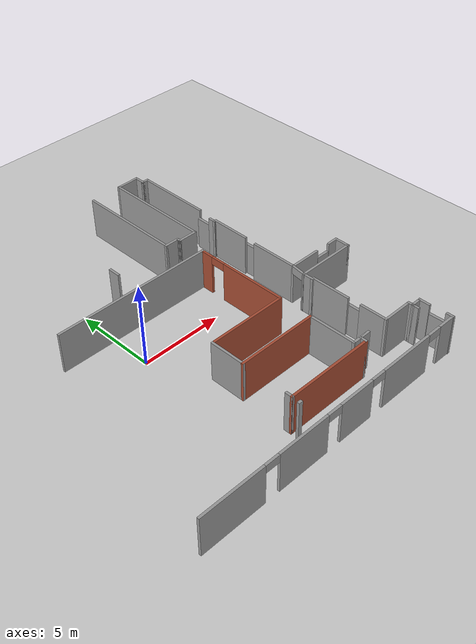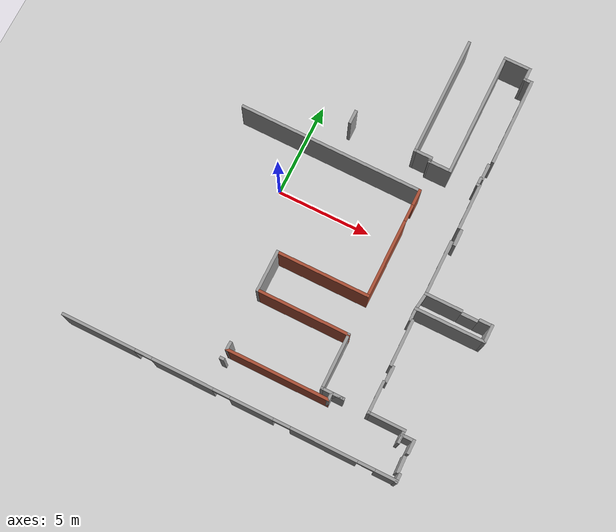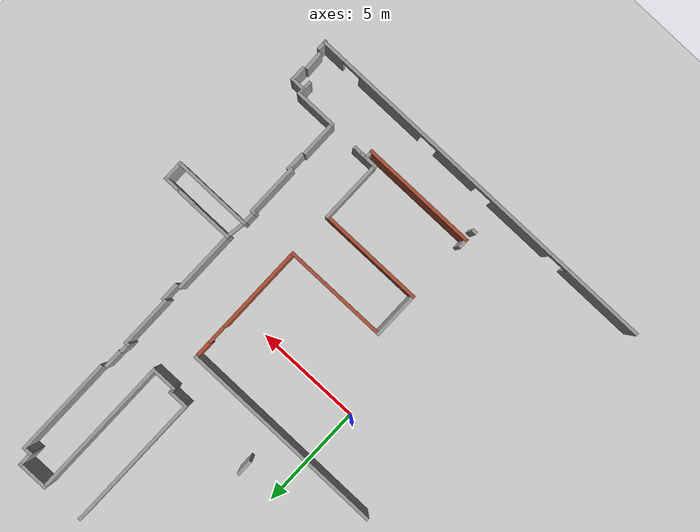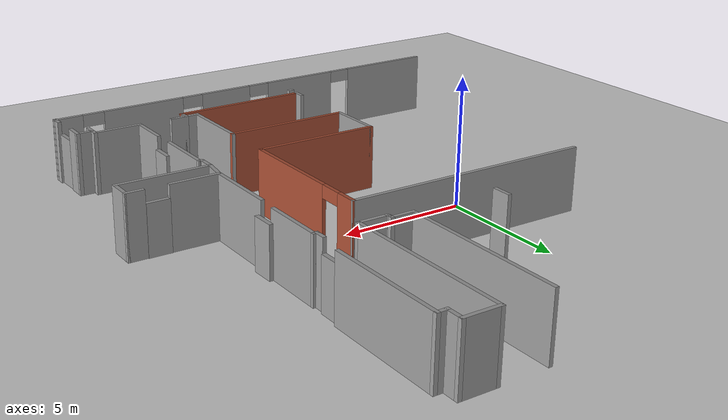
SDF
<sdf version="1.4">
 <world name="default">
  <include><uri>model://ground_plane</uri></include>
  <include><uri>model://sun</uri></include>
  <model name="3rdFloor">
   <static>true</static>
   <link name="Door_2">
    <collision name="Door_2_Collision">
     <geometry><box><size>0.9 0.17 2</size></box></geometry>
     <pose>0 0 1 0 -0 0</pose>
    </collision>
    <visual name="Door_2_Visual">
     <pose>0 0 1 0 -0 0</pose>
     <geometry><box><size>0.9 0.17 2</size></box></geometry>
     <material>
      <script><uri>file://media/materials/scripts/gazebo.material</uri><name>Gazebo/Grey</name></script>
     </material>
    </visual>
    <pose>11.3433 -9.80732 0 0 -0 1.5995</pose>
   </link>
   <link name="Door_3">
    <collision name="Door_3_Collision">
     <geometry><box><size>0.9 0.17 2</size></box></geometry>
     <pose>0 0 1 0 -0 0</pose>
    </collision>
    <visual name="Door_3_Visual">
     <pose>0 0 1 0 -0 0</pose>
     <geometry><box><size>0.9 0.17 2</size></box></geometry>
     <material>
      <script><uri>file://media/materials/scripts/gazebo.material</uri><name>Gazebo/Grey</name></script>
     </material>
    </visual>
    <pose>9.02 -6.21968 0 0 -0 1.5708</pose>
   </link>
   <link name="Door_4">
    <collision name="Door_4_Collision">
     <geometry><box><size>0.9 0.17 2</size></box></geometry>
     <pose>0 0 1 0 -0 0</pose>
    </collision>
    <visual name="Door_4_Visual">
     <pose>0 0 1 0 -0 0</pose>
     <geometry><box><size>0.9 0.17 2</size></box></geometry>
     <material>
      <script><uri>file://media/materials/scripts/gazebo.material</uri><name>Gazebo/Grey</name></script>
     </material>
    </visual>
    <pose>11.2709 -2.03728 0 0 -0 3.13685</pose>
   </link>
   <link name="Door_5">
    <collision name="Door_5_Collision">
     <geometry><box><size>0.9 0.17 2</size></box></geometry>
     <pose>0 0 1 0 -0 0</pose>
    </collision>
    <visual name="Door_5_Visual">
     <pose>0 0 1 0 -0 0</pose>
     <geometry><box><size>0.9 0.17 2</size></box></geometry>
     <material>
      <script><uri>file://media/materials/scripts/gazebo.material</uri><name>Gazebo/Grey</name></script>
     </material>
    </visual>
    <pose>9.12646 1.30865 0 0 -0 1.58598</pose>
   </link>
   <link name="Door_6">
    <collision name="Door_6_Collision">
     <geometry><box><size>0.9 0.17 2</size></box></geometry>
     <pose>0 0 1 0 -0 0</pose>
    </collision>
    <visual name="Door_6_Visual">
     <pose>0 0 1 0 -0 0</pose>
     <geometry><box><size>0.9 0.17 2</size></box></geometry>
     <material>
      <script><uri>file://media/materials/scripts/gazebo.material</uri><name>Gazebo/Grey</name></script>
     </material>
    </visual>
    <pose>8.94396 4.95875 0 0 -0 1.5708</pose>
   </link>
   <link name="Wall_0">
    <pose>2.65717 -10.632 0 0 -0 0</pose>
    <visual name="Wall_0_Visual_0">
     <pose>-6.9013 0 1.25 0 -0 0</pose>
     <geometry><box><size>3.94739 0.15 2.5</size></box></geometry>
     <material>
      <script><uri>file://media/materials/scripts/gazebo.material</uri><name>Gazebo/Grey</name></script>
      <ambient>1 1 1 1</ambient>
     </material>
    </visual>
    <collision name="Wall_0_Collision_0">
     <geometry><box><size>3.94739 0.15 2.5</size></box></geometry>
     <pose>-6.9013 0 1.25 0 -0 0</pose>
    </collision>
    <visual name="Wall_0_Visual_1">
     <pose>-2.40206 0 1.25 0 -0 0</pose>
     <geometry><box><size>3.25109 0.15 2.5</size></box></geometry>
     <material>
      <script><uri>file://media/materials/scripts/gazebo.material</uri><name>Gazebo/Grey</name></script>
      <ambient>1 1 1 1</ambient>
     </material>
    </visual>
    <collision name="Wall_0_Collision_1">
     <geometry><box><size>3.25109 0.15 2.5</size></box></geometry>
     <pose>-2.40206 0 1.25 0 -0 0</pose>
    </collision>
    <visual name="Wall_0_Visual_2">
     <pose>1.25653 0 1.25 0 -0 0</pose>
     <geometry><box><size>2.26609 0.15 2.5</size></box></geometry>
     <material>
      <script><uri>file://media/materials/scripts/gazebo.material</uri><name>Gazebo/Grey</name></script>
      <ambient>1 1 1 1</ambient>
     </material>
    </visual>
    <collision name="Wall_0_Collision_2">
     <geometry><box><size>2.26609 0.15 2.5</size></box></geometry>
     <pose>1.25653 0 1.25 0 -0 0</pose>
    </collision>
    <visual name="Wall_0_Visual_3">
     <pose>5.03825 0 1.25 0 -0 0</pose>
     <geometry><box><size>3.49735 0.15 2.5</size></box></geometry>
     <material>
      <script><uri>file://media/materials/scripts/gazebo.material</uri><name>Gazebo/Grey</name></script>
      <ambient>1 1 1 1</ambient>
     </material>
    </visual>
    <collision name="Wall_0_Collision_3">
     <geometry><box><size>3.49735 0.15 2.5</size></box></geometry>
     <pose>5.03825 0 1.25 0 -0 0</pose>
    </collision>
    <visual name="Wall_0_Visual_4">
     <pose>8.28096 0 1.25 0 -0 0</pose>
     <geometry><box><size>1.18808 0.15 2.5</size></box></geometry>
     <material>
      <script><uri>file://media/materials/scripts/gazebo.material</uri><name>Gazebo/Grey</name></script>
      <ambient>1 1 1 1</ambient>
     </material>
    </visual>
    <collision name="Wall_0_Collision_4">
     <geometry><box><size>1.18808 0.15 2.5</size></box></geometry>
     <pose>8.28096 0 1.25 0 -0 0</pose>
    </collision>
    <visual name="Wall_0_Visual_5">
     <pose>-4.47761 0 2.25 0 -0 0</pose>
     <geometry><box><size>0.9 0.15 0.5</size></box></geometry>
     <material>
      <script><uri>file://media/materials/scripts/gazebo.material</uri><name>Gazebo/Grey</name></script>
      <ambient>1 1 1 1</ambient>
     </material>
    </visual>
    <collision name="Wall_0_Collision_5">
     <geometry><box><size>0.9 0.15 0.5</size></box></geometry>
     <pose>-4.47761 0 2.25 0 -0 0</pose>
    </collision>
    <visual name="Wall_0_Visual_6">
     <pose>-0.326515 0 2.25 0 -0 0</pose>
     <geometry><box><size>0.9 0.15 0.5</size></box></geometry>
     <material>
      <script><uri>file://media/materials/scripts/gazebo.material</uri><name>Gazebo/Grey</name></script>
      <ambient>1 1 1 1</ambient>
     </material>
    </visual>
    <collision name="Wall_0_Collision_6">
     <geometry><box><size>0.9 0.15 0.5</size></box></geometry>
     <pose>-0.326515 0 2.25 0 -0 0</pose>
    </collision>
    <visual name="Wall_0_Visual_7">
     <pose>2.83957 0 2.25 0 -0 0</pose>
     <geometry><box><size>0.9 0.15 0.5</size></box></geometry>
     <material>
      <script><uri>file://media/materials/scripts/gazebo.material</uri><name>Gazebo/Grey</name></script>
      <ambient>1 1 1 1</ambient>
     </material>
    </visual>
    <collision name="Wall_0_Collision_7">
     <geometry><box><size>0.9 0.15 0.5</size></box></geometry>
     <pose>2.83957 0 2.25 0 -0 0</pose>
    </collision>
    <visual name="Wall_0_Visual_8">
     <pose>7.23692 0 2.25 0 -0 0</pose>
     <geometry><box><size>0.9 0.15 0.5</size></box></geometry>
     <material>
      <script><uri>file://media/materials/scripts/gazebo.material</uri><name>Gazebo/Grey</name></script>
      <ambient>1 1 1 1</ambient>
     </material>
    </visual>
    <collision name="Wall_0_Collision_8">
     <geometry><box><size>0.9 0.15 0.5</size></box></geometry>
     <pose>7.23692 0 2.25 0 -0 0</pose>
    </collision>
   </link>
   <link name="Wall_10">
    <collision name="Wall_10_Collision">
     <geometry><box><size>0.75 0.15 2.5</size></box></geometry>
     <pose>0 0 1.25 0 -0 0</pose>
    </collision>
    <visual name="Wall_10_Visual">
     <pose>0 0 1.25 0 -0 0</pose>
     <geometry><box><size>0.75 0.15 2.5</size></box></geometry>
     <material>
      <script><uri>file://media/materials/scripts/gazebo.material</uri><name>Gazebo/Grey</name></script>
      <ambient>1 1 1 1</ambient>
     </material>
    </visual>
    <pose>11.3774 -8.91581 0 0 -0 1.5708</pose>
   </link>
   <link name="Wall_11">
    <collision name="Wall_11_Collision">
     <geometry><box><size>0.75 0.15 2.5</size></box></geometry>
     <pose>0 0 1.25 0 -0 0</pose>
    </collision>
    <visual name="Wall_11_Visual">
     <pose>0 0 1.25 0 -0 0</pose>
     <geometry><box><size>0.75 0.15 2.5</size></box></geometry>
     <material>
      <script><uri>file://media/materials/scripts/gazebo.material</uri><name>Gazebo/Grey</name></script>
      <ambient>1 1 1 1</ambient>
     </material>
    </visual>
    <pose>11.0774 -8.61581 0 0 -0 3.14159</pose>
   </link>
   <link name="Wall_118">
    <collision name="Wall_118_Collision">
     <geometry><box><size>0.25 0.15 2.5</size></box></geometry>
     <pose>0 0 1.25 0 -0 0</pose>
    </collision>
    <visual name="Wall_118_Visual">
     <pose>0 0 1.25 0 -0 0</pose>
     <geometry><box><size>0.25 0.15 2.5</size></box></geometry>
     <material>
      <script><uri>file://media/materials/scripts/gazebo.material</uri><name>Gazebo/Grey</name></script>
      <ambient>1 1 1 1</ambient>
     </material>
    </visual>
    <pose>1.60263 -9.15111 0 0 -0 0</pose>
   </link>
   <link name="Wall_12">
    <collision name="Wall_12_Collision">
     <geometry><box><size>0.5 0.15 2.5</size></box></geometry>
     <pose>0 0 1.25 0 -0 0</pose>
    </collision>
    <visual name="Wall_12_Visual">
     <pose>0 0 1.25 0 -0 0</pose>
     <geometry><box><size>0.5 0.15 2.5</size></box></geometry>
     <material>
      <script><uri>file://media/materials/scripts/gazebo.material</uri><name>Gazebo/Grey</name></script>
      <ambient>1 1 1 1</ambient>
     </material>
    </visual>
    <pose>10.7774 -8.79081 0 0 0 -1.5708</pose>
   </link>
   <link name="Wall_128">
    <pose>8.85867 -2.47097 0 0 0 -1.70903</pose>
    <visual name="Wall_128_Visual_0">
     <pose>-0.493314 0 1.25 0 -0 0</pose>
     <geometry><box><size>0.039123 0.15 2.5</size></box></geometry>
     <material>
      <script><uri>file://media/materials/scripts/gazebo.material</uri><name>Gazebo/Grey</name></script>
      <ambient>1 1 1 1</ambient>
     </material>
    </visual>
    <collision name="Wall_128_Collision_0">
     <geometry><box><size>0.039123 0.15 2.5</size></box></geometry>
     <pose>-0.493314 0 1.25 0 -0 0</pose>
    </collision>
    <visual name="Wall_128_Visual_1">
     <pose>0.469562 0 1.25 0 -0 0</pose>
     <geometry><box><size>0.086627 0.15 2.5</size></box></geometry>
     <material>
      <script><uri>file://media/materials/scripts/gazebo.material</uri><name>Gazebo/Grey</name></script>
      <ambient>1 1 1 1</ambient>
     </material>
    </visual>
    <collision name="Wall_128_Collision_1">
     <geometry><box><size>0.086627 0.15 2.5</size></box></geometry>
     <pose>0.469562 0 1.25 0 -0 0</pose>
    </collision>
    <visual name="Wall_128_Visual_2">
     <pose>-0.023752 0 2.25 0 -0 0</pose>
     <geometry><box><size>0.9 0.15 0.5</size></box></geometry>
     <material>
      <script><uri>file://media/materials/scripts/gazebo.material</uri><name>Gazebo/Grey</name></script>
      <ambient>1 1 1 1</ambient>
     </material>
    </visual>
    <collision name="Wall_128_Collision_2">
     <geometry><box><size>0.9 0.15 0.5</size></box></geometry>
     <pose>-0.023752 0 2.25 0 -0 0</pose>
    </collision>
   </link>
   <link name="Wall_13">
    <collision name="Wall_13_Collision">
     <geometry><box><size>0.75 0.15 2.5</size></box></geometry>
     <pose>0 0 1.25 0 -0 0</pose>
    </collision>
    <visual name="Wall_13_Visual">
     <pose>0 0 1.25 0 -0 0</pose>
     <geometry><box><size>0.75 0.15 2.5</size></box></geometry>
     <material>
      <script><uri>file://media/materials/scripts/gazebo.material</uri><name>Gazebo/Grey</name></script>
      <ambient>1 1 1 1</ambient>
     </material>
    </visual>
    <pose>10.7774 -8.66581 0 0 -0 1.5708</pose>
   </link>
   <link name="Wall_14">
    <collision name="Wall_14_Collision">
     <geometry><box><size>2 0.15 2.5</size></box></geometry>
     <pose>0 0 1.25 0 -0 0</pose>
    </collision>
    <visual name="Wall_14_Visual">
     <pose>0 0 1.25 0 -0 0</pose>
     <geometry><box><size>2 0.15 2.5</size></box></geometry>
     <material>
      <script><uri>file://media/materials/scripts/gazebo.material</uri><name>Gazebo/Grey</name></script>
      <ambient>1 1 1 1</ambient>
     </material>
    </visual>
    <pose>9.85236 -8.36581 0 0 -0 3.14159</pose>
   </link>
   <link name="Wall_15">
    <collision name="Wall_15_Collision">
     <geometry><box><size>1.75 0.15 2.5</size></box></geometry>
     <pose>0 0 1.25 0 -0 0</pose>
    </collision>
    <visual name="Wall_15_Visual">
     <pose>0 0 1.25 0 -0 0</pose>
     <geometry><box><size>1.75 0.15 2.5</size></box></geometry>
     <material>
      <script><uri>file://media/materials/scripts/gazebo.material</uri><name>Gazebo/Grey</name></script>
      <ambient>1 1 1 1</ambient>
     </material>
    </visual>
    <pose>8.92736 -7.56581 0 0 -0 1.5708</pose>
   </link>
   <link name="Wall_17">
    <collision name="Wall_17_Collision">
     <geometry><box><size>2.5 0.15 2.5</size></box></geometry>
     <pose>0 0 1.25 0 -0 0</pose>
    </collision>
    <visual name="Wall_17_Visual">
     <pose>0 0 1.25 0 -0 0</pose>
     <geometry><box><size>2.5 0.15 2.5</size></box></geometry>
     <material>
      <script><uri>file://media/materials/scripts/gazebo.material</uri><name>Gazebo/Grey</name></script>
      <ambient>1 1 1 1</ambient>
     </material>
    </visual>
    <pose>8.89833 -4.67967 0 0 -0 1.5708</pose>
   </link>
   <link name="Wall_18">
    <collision name="Wall_18_Collision">
     <geometry><box><size>0.25 0.15 2.5</size></box></geometry>
     <pose>0 0 1.25 0 -0 0</pose>
    </collision>
    <visual name="Wall_18_Visual">
     <pose>0 0 1.25 0 -0 0</pose>
     <geometry><box><size>0.25 0.15 2.5</size></box></geometry>
     <material>
      <script><uri>file://media/materials/scripts/gazebo.material</uri><name>Gazebo/Grey</name></script>
      <ambient>1 1 1 1</ambient>
     </material>
    </visual>
    <pose>8.84833 -3.50467 0 0 -0 3.14159</pose>
   </link>
   <link name="Wall_19">
    <collision name="Wall_19_Collision">
     <geometry><box><size>0.75 0.15 2.5</size></box></geometry>
     <pose>0 0 1.25 0 -0 0</pose>
    </collision>
    <visual name="Wall_19_Visual">
     <pose>0 0 1.25 0 -0 0</pose>
     <geometry><box><size>0.75 0.15 2.5</size></box></geometry>
     <material>
      <script><uri>file://media/materials/scripts/gazebo.material</uri><name>Gazebo/Grey</name></script>
      <ambient>1 1 1 1</ambient>
     </material>
    </visual>
    <pose>8.79833 -3.20467 0 0 -0 1.5708</pose>
   </link>
   <link name="Wall_20">
    <collision name="Wall_20_Collision">
     <geometry><box><size>3.75 0.15 2.5</size></box></geometry>
     <pose>0 0 1.25 0 -0 0</pose>
    </collision>
    <visual name="Wall_20_Visual">
     <pose>0 0 1.25 0 -0 0</pose>
     <geometry><box><size>3.75 0.15 2.5</size></box></geometry>
     <material>
      <script><uri>file://media/materials/scripts/gazebo.material</uri><name>Gazebo/Grey</name></script>
      <ambient>1 1 1 1</ambient>
     </material>
    </visual>
    <pose>10.5983 -2.90467 0 0 -0 0</pose>
   </link>
   <link name="Wall_21">
    <collision name="Wall_21_Collision">
     <geometry><box><size>1 0.15 2.5</size></box></geometry>
     <pose>0 0 1.25 0 -0 0</pose>
    </collision>
    <visual name="Wall_21_Visual">
     <pose>0 0 1.25 0 -0 0</pose>
     <geometry><box><size>1 0.15 2.5</size></box></geometry>
     <material>
      <script><uri>file://media/materials/scripts/gazebo.material</uri><name>Gazebo/Grey</name></script>
      <ambient>1 1 1 1</ambient>
     </material>
    </visual>
    <pose>12.3983 -2.47967 0 0 -0 1.5708</pose>
   </link>
   <link name="Wall_22">
    <collision name="Wall_22_Collision">
     <geometry><box><size>0.75 0.15 2.5</size></box></geometry>
     <pose>0 0 1.25 0 -0 0</pose>
    </collision>
    <visual name="Wall_22_Visual">
     <pose>0 0 1.25 0 -0 0</pose>
     <geometry><box><size>0.75 0.15 2.5</size></box></geometry>
     <material>
      <script><uri>file://media/materials/scripts/gazebo.material</uri><name>Gazebo/Grey</name></script>
      <ambient>1 1 1 1</ambient>
     </material>
    </visual>
    <pose>12.0983 -2.05467 0 0 -0 3.14159</pose>
   </link>
   <link name="Wall_24">
    <collision name="Wall_24_Collision">
     <geometry><box><size>2 0.15 2.5</size></box></geometry>
     <pose>0 0 1.25 0 -0 0</pose>
    </collision>
    <visual name="Wall_24_Visual">
     <pose>0 0 1.25 0 -0 0</pose>
     <geometry><box><size>2 0.15 2.5</size></box></geometry>
     <material>
      <script><uri>file://media/materials/scripts/gazebo.material</uri><name>Gazebo/Grey</name></script>
      <ambient>1 1 1 1</ambient>
     </material>
    </visual>
    <pose>9.84401 -2.03728 0 0 -0 3.14159</pose>
   </link>
   <link name="Wall_27">
    <collision name="Wall_27_Collision">
     <geometry><box><size>3 0.15 2.5</size></box></geometry>
     <pose>0 0 1.25 0 -0 0</pose>
    </collision>
    <visual name="Wall_27_Visual">
     <pose>0 0 1.25 0 -0 0</pose>
     <geometry><box><size>3 0.15 2.5</size></box></geometry>
     <material>
      <script><uri>file://media/materials/scripts/gazebo.material</uri><name>Gazebo/Grey</name></script>
      <ambient>1 1 1 1</ambient>
     </material>
    </visual>
    <pose>8.91901 -0.612276 0 0 -0 1.5708</pose>
   </link>
   <link name="Wall_29">
    <collision name="Wall_29_Collision">
     <geometry><box><size>2.5 0.15 2.5</size></box></geometry>
     <pose>0 0 1.25 0 -0 0</pose>
    </collision>
    <visual name="Wall_29_Visual">
     <pose>0 0 1.25 0 -0 0</pose>
     <geometry><box><size>2.5 0.15 2.5</size></box></geometry>
     <material>
      <script><uri>file://media/materials/scripts/gazebo.material</uri><name>Gazebo/Grey</name></script>
      <ambient>1 1 1 1</ambient>
     </material>
    </visual>
    <pose>8.97437 2.84866 0 0 -0 1.5708</pose>
   </link>
   <link name="Wall_31">
    <collision name="Wall_31_Collision">
     <geometry><box><size>0.25 0.15 2.5</size></box></geometry>
     <pose>0 0 1.25 0 -0 0</pose>
    </collision>
    <visual name="Wall_31_Visual">
     <pose>0 0 1.25 0 -0 0</pose>
     <geometry><box><size>0.25 0.15 2.5</size></box></geometry>
     <material>
      <script><uri>file://media/materials/scripts/gazebo.material</uri><name>Gazebo/Grey</name></script>
      <ambient>1 1 1 1</ambient>
     </material>
    </visual>
    <pose>8.92437 4.02366 0 0 -0 3.14159</pose>
   </link>
   <link name="Wall_32">
    <collision name="Wall_32_Collision">
     <geometry><box><size>0.5 0.15 2.5</size></box></geometry>
     <pose>0 0 1.25 0 -0 0</pose>
    </collision>
    <visual name="Wall_32_Visual">
     <pose>0 0 1.25 0 -0 0</pose>
     <geometry><box><size>0.5 0.15 2.5</size></box></geometry>
     <material>
      <script><uri>file://media/materials/scripts/gazebo.material</uri><name>Gazebo/Grey</name></script>
      <ambient>1 1 1 1</ambient>
     </material>
    </visual>
    <pose>8.87437 4.19866 0 0 -0 1.5708</pose>
   </link>
   <link name="Wall_34">
    <collision name="Wall_34_Collision">
     <geometry><box><size>4.75 0.15 2.5</size></box></geometry>
     <pose>0 0 1.25 0 -0 0</pose>
    </collision>
    <visual name="Wall_34_Visual">
     <pose>0 0 1.25 0 -0 0</pose>
     <geometry><box><size>4.75 0.15 2.5</size></box></geometry>
     <material>
      <script><uri>file://media/materials/scripts/gazebo.material</uri><name>Gazebo/Grey</name></script>
      <ambient>1 1 1 1</ambient>
     </material>
    </visual>
    <pose>9.06563 7.76064 0 0 -0 1.5708</pose>
   </link>
   <link name="Wall_35">
    <collision name="Wall_35_Collision">
     <geometry><box><size>0.5 0.15 2.5</size></box></geometry>
     <pose>0 0 1.25 0 -0 0</pose>
    </collision>
    <visual name="Wall_35_Visual">
     <pose>0 0 1.25 0 -0 0</pose>
     <geometry><box><size>0.5 0.15 2.5</size></box></geometry>
     <material>
      <script><uri>file://media/materials/scripts/gazebo.material</uri><name>Gazebo/Grey</name></script>
      <ambient>1 1 1 1</ambient>
     </material>
    </visual>
    <pose>8.89063 10.0606 0 0 -0 3.14159</pose>
   </link>
   <link name="Wall_36">
    <collision name="Wall_36_Collision">
     <geometry><box><size>0.75 0.15 2.5</size></box></geometry>
     <pose>0 0 1.25 0 -0 0</pose>
    </collision>
    <visual name="Wall_36_Visual">
     <pose>0 0 1.25 0 -0 0</pose>
     <geometry><box><size>0.75 0.15 2.5</size></box></geometry>
     <material>
      <script><uri>file://media/materials/scripts/gazebo.material</uri><name>Gazebo/Grey</name></script>
      <ambient>1 1 1 1</ambient>
     </material>
    </visual>
    <pose>8.71563 10.3606 0 0 -0 1.5708</pose>
   </link>
   <link name="Wall_37">
    <collision name="Wall_37_Collision">
     <geometry><box><size>1.5 0.15 2.5</size></box></geometry>
     <pose>0 0 1.25 0 -0 0</pose>
    </collision>
    <visual name="Wall_37_Visual">
     <pose>0 0 1.25 0 -0 0</pose>
     <geometry><box><size>1.5 0.15 2.5</size></box></geometry>
     <material>
      <script><uri>file://media/materials/scripts/gazebo.material</uri><name>Gazebo/Grey</name></script>
      <ambient>1 1 1 1</ambient>
     </material>
    </visual>
    <pose>8.04063 10.6606 0 0 -0 3.14159</pose>
   </link>
   <link name="Wall_38">
    <collision name="Wall_38_Collision">
     <geometry><box><size>6.75 0.15 2.5</size></box></geometry>
     <pose>0 0 1.25 0 -0 0</pose>
    </collision>
    <visual name="Wall_38_Visual">
     <pose>0 0 1.25 0 -0 0</pose>
     <geometry><box><size>6.75 0.15 2.5</size></box></geometry>
     <material>
      <script><uri>file://media/materials/scripts/gazebo.material</uri><name>Gazebo/Grey</name></script>
      <ambient>1 1 1 1</ambient>
     </material>
    </visual>
    <pose>7.36563 7.36064 0 0 0 -1.5708</pose>
   </link>
   <link name="Wall_39">
    <collision name="Wall_39_Collision">
     <geometry><box><size>1.25 0.15 2.5</size></box></geometry>
     <pose>0 0 1.25 0 -0 0</pose>
    </collision>
    <visual name="Wall_39_Visual">
     <pose>0 0 1.25 0 -0 0</pose>
     <geometry><box><size>1.25 0.15 2.5</size></box></geometry>
     <material>
      <script><uri>file://media/materials/scripts/gazebo.material</uri><name>Gazebo/Grey</name></script>
      <ambient>1 1 1 1</ambient>
     </material>
    </visual>
    <pose>6.81563 4.06064 0 0 -0 3.14159</pose>
   </link>
   <link name="Wall_40">
    <collision name="Wall_40_Collision">
     <geometry><box><size>0.25 0.15 2.5</size></box></geometry>
     <pose>0 0 1.25 0 -0 0</pose>
    </collision>
    <visual name="Wall_40_Visual">
     <pose>0 0 1.25 0 -0 0</pose>
     <geometry><box><size>0.25 0.15 2.5</size></box></geometry>
     <material>
      <script><uri>file://media/materials/scripts/gazebo.material</uri><name>Gazebo/Grey</name></script>
      <ambient>1 1 1 1</ambient>
     </material>
    </visual>
    <pose>6.25269 4.10893 0 0 -0 1.8326</pose>
   </link>
   <link name="Wall_41">
    <collision name="Wall_41_Collision">
     <geometry><box><size>0.25 0.15 2.5</size></box></geometry>
     <pose>0 0 1.25 0 -0 0</pose>
    </collision>
    <visual name="Wall_41_Visual">
     <pose>0 0 1.25 0 -0 0</pose>
     <geometry><box><size>0.25 0.15 2.5</size></box></geometry>
     <material>
      <script><uri>file://media/materials/scripts/gazebo.material</uri><name>Gazebo/Grey</name></script>
      <ambient>1 1 1 1</ambient>
     </material>
    </visual>
    <pose>6.23975 4.20723 0 0 -0 1.5708</pose>
   </link>
   <link name="Wall_42">
    <collision name="Wall_42_Collision">
     <geometry><box><size>1 0.15 2.5</size></box></geometry>
     <pose>0 0 1.25 0 -0 0</pose>
    </collision>
    <visual name="Wall_42_Visual">
     <pose>0 0 1.25 0 -0 0</pose>
     <geometry><box><size>1 0.15 2.5</size></box></geometry>
     <material>
      <script><uri>file://media/materials/scripts/gazebo.material</uri><name>Gazebo/Grey</name></script>
      <ambient>1 1 1 1</ambient>
     </material>
    </visual>
    <pose>5.81474 4.25723 0 0 -0 3.14159</pose>
   </link>
   <link name="Wall_43">
    <collision name="Wall_43_Collision">
     <geometry><box><size>6.5 0.15 2.5</size></box></geometry>
     <pose>0 0 1.25 0 -0 0</pose>
    </collision>
    <visual name="Wall_43_Visual">
     <pose>0 0 1.25 0 -0 0</pose>
     <geometry><box><size>6.5 0.15 2.5</size></box></geometry>
     <material>
      <script><uri>file://media/materials/scripts/gazebo.material</uri><name>Gazebo/Grey</name></script>
      <ambient>1 1 1 1</ambient>
     </material>
    </visual>
    <pose>5.38974 7.43223 0 0 -0 1.5708</pose>
   </link>
   <link name="Wall_75">
    <collision name="Wall_75_Collision">
     <geometry><box><size>0.5 0.15 2.5</size></box></geometry>
     <pose>0 0 1.25 0 -0 0</pose>
    </collision>
    <visual name="Wall_75_Visual">
     <pose>0 0 1.25 0 -0 0</pose>
     <geometry><box><size>0.5 0.15 2.5</size></box></geometry>
     <material>
      <script><uri>file://media/materials/scripts/gazebo.material</uri><name>Gazebo/Grey</name></script>
      <ambient>1 1 1 1</ambient>
     </material>
    </visual>
    <pose>1.61623 -8.48963 0 0 0 -1.5708</pose>
   </link>
   <link name="Wall_76">
    <collision name="Wall_76_Collision">
     <geometry><box><size>5.5 0.15 2.5</size></box></geometry>
     <pose>0 0 1.25 0 -0 0</pose>
    </collision>
    <visual name="Wall_76_Visual">
     <pose>0 0 1.25 0 -0 0</pose>
     <geometry><box><size>5.5 0.15 2.5</size></box></geometry>
     <material>
      <script><uri>file://media/materials/scripts/gazebo.material</uri><name>Gazebo/Bricks</name></script>
      <ambient>1 1 1 1</ambient>
     </material>
    </visual>
    <pose>4.29123 -8.66463 0 0 -0 0</pose>
   </link>
   <link name="Wall_77">
    <collision name="Wall_77_Collision">
     <geometry><box><size>0.5 0.15 2.5</size></box></geometry>
     <pose>0 0 1.25 0 -0 0</pose>
    </collision>
    <visual name="Wall_77_Visual">
     <pose>0 0 1.25 0 -0 0</pose>
     <geometry><box><size>0.5 0.15 2.5</size></box></geometry>
     <material>
      <script><uri>file://media/materials/scripts/gazebo.material</uri><name>Gazebo/Grey</name></script>
      <ambient>1 1 1 1</ambient>
     </material>
    </visual>
    <pose>6.96623 -8.48963 0 0 -0 1.5708</pose>
   </link>
   <link name="Wall_78">
    <collision name="Wall_78_Collision">
     <geometry><box><size>0.75 0.15 2.5</size></box></geometry>
     <pose>0 0 1.25 0 -0 0</pose>
    </collision>
    <visual name="Wall_78_Visual">
     <pose>0 0 1.25 0 -0 0</pose>
     <geometry><box><size>0.75 0.15 2.5</size></box></geometry>
     <material>
      <script><uri>file://media/materials/scripts/gazebo.material</uri><name>Gazebo/Grey</name></script>
      <ambient>1 1 1 1</ambient>
     </material>
    </visual>
    <pose>7.26623 -8.31463 0 0 -0 0</pose>
   </link>
   <link name="Wall_79">
    <collision name="Wall_79_Collision">
     <geometry><box><size>1.25 0.15 2.5</size></box></geometry>
     <pose>0 0 1.25 0 -0 0</pose>
    </collision>
    <visual name="Wall_79_Visual">
     <pose>0 0 1.25 0 -0 0</pose>
     <geometry><box><size>1.25 0.15 2.5</size></box></geometry>
     <material>
      <script><uri>file://media/materials/scripts/gazebo.material</uri><name>Gazebo/Grey</name></script>
      <ambient>1 1 1 1</ambient>
     </material>
    </visual>
    <pose>7.01623 -8.31463 0 0 -0 3.14159</pose>
   </link>
   <link name="Wall_8">
    <collision name="Wall_8_Collision">
     <geometry><box><size>0.5 0.15 2.5</size></box></geometry>
     <pose>0 0 1.25 0 -0 0</pose>
    </collision>
    <visual name="Wall_8_Visual">
     <pose>0 0 1.25 0 -0 0</pose>
     <geometry><box><size>0.5 0.15 2.5</size></box></geometry>
     <material>
      <script><uri>file://media/materials/scripts/gazebo.material</uri><name>Gazebo/Grey</name></script>
      <ambient>1 1 1 1</ambient>
     </material>
    </visual>
    <pose>11.4534 -10.4856 0 0 -0 1.5708</pose>
   </link>
   <link name="Wall_80">
    <collision name="Wall_80_Collision">
     <geometry><box><size>3 0.15 2.5</size></box></geometry>
     <pose>0 0 1.25 0 -0 0</pose>
    </collision>
    <visual name="Wall_80_Visual">
     <pose>0 0 1.25 0 -0 0</pose>
     <geometry><box><size>3 0.15 2.5</size></box></geometry>
     <material>
      <script><uri>file://media/materials/scripts/gazebo.material</uri><name>Gazebo/Grey</name></script>
      <ambient>1 1 1 1</ambient>
     </material>
    </visual>
    <pose>6.46623 -6.88963 0 0 -0 1.5708</pose>
   </link>
   <link name="Wall_81">
    <collision name="Wall_81_Collision">
     <geometry><box><size>5 0.15 2.5</size></box></geometry>
     <pose>0 0 1.25 0 -0 0</pose>
    </collision>
    <visual name="Wall_81_Visual">
     <pose>0 0 1.25 0 -0 0</pose>
     <geometry><box><size>5 0.15 2.5</size></box></geometry>
     <material>
      <script><uri>file://media/materials/scripts/gazebo.material</uri><name>Gazebo/Bricks</name></script>
      <ambient>1 1 1 1</ambient>
     </material>
    </visual>
    <pose>4.04123 -5.46463 0 0 -0 3.14159</pose>
   </link>
   <link name="Wall_82">
    <collision name="Wall_82_Collision">
     <geometry><box><size>2.25 0.15 2.5</size></box></geometry>
     <pose>0 0 1.25 0 -0 0</pose>
    </collision>
    <visual name="Wall_82_Visual">
     <pose>0 0 1.25 0 -0 0</pose>
     <geometry><box><size>2.25 0.15 2.5</size></box></geometry>
     <material>
      <script><uri>file://media/materials/scripts/gazebo.material</uri><name>Gazebo/Grey</name></script>
      <ambient>1 1 1 1</ambient>
     </material>
    </visual>
    <pose>1.61623 -4.41463 0 0 -0 1.5708</pose>
   </link>
   <link name="Wall_83">
    <collision name="Wall_83_Collision">
     <geometry><box><size>5 0.15 2.5</size></box></geometry>
     <pose>0 0 1.25 0 -0 0</pose>
    </collision>
    <visual name="Wall_83_Visual">
     <pose>0 0 1.25 0 -0 0</pose>
     <geometry><box><size>5 0.15 2.5</size></box></geometry>
     <material>
      <script><uri>file://media/materials/scripts/gazebo.material</uri><name>Gazebo/Bricks</name></script>
      <ambient>1 1 1 1</ambient>
     </material>
    </visual>
    <pose>4.04123 -3.36463 0 0 -0 0</pose>
   </link>
   <link name="Wall_84">
    <pose>6.46623 -0.439626 0 0 -0 1.5708</pose>
    <visual name="Wall_84_Visual_0">
     <pose>-0.89066 0 1.25 0 -0 0</pose>
     <geometry><box><size>4.21868 0.15 2.5</size></box></geometry>
     <material>
      <script><uri>file://media/materials/scripts/gazebo.material</uri><name>Gazebo/Bricks</name></script>
      <ambient>1 1 1 1</ambient>
     </material>
    </visual>
    <collision name="Wall_84_Collision_0">
     <geometry><box><size>4.21868 0.15 2.5</size></box></geometry>
     <pose>-0.89066 0 1.25 0 -0 0</pose>
    </collision>
    <visual name="Wall_84_Visual_1">
     <pose>2.55934 0 1.25 0 -0 0</pose>
     <geometry><box><size>0.881319 0.15 2.5</size></box></geometry>
     <material>
      <script><uri>file://media/materials/scripts/gazebo.material</uri><name>Gazebo/Bricks</name></script>
      <ambient>1 1 1 1</ambient>
     </material>
    </visual>
    <collision name="Wall_84_Collision_1">
     <geometry><box><size>0.881319 0.15 2.5</size></box></geometry>
     <pose>2.55934 0 1.25 0 -0 0</pose>
    </collision>
    <visual name="Wall_84_Visual_2">
     <pose>1.66868 0 2.25 0 -0 0</pose>
     <geometry><box><size>0.9 0.15 0.5</size></box></geometry>
     <material>
      <script><uri>file://media/materials/scripts/gazebo.material</uri><name>Gazebo/Bricks</name></script>
      <ambient>1 1 1 1</ambient>
     </material>
    </visual>
    <collision name="Wall_84_Collision_2">
     <geometry><box><size>0.9 0.15 0.5</size></box></geometry>
     <pose>1.66868 0 2.25 0 -0 0</pose>
    </collision>
   </link>
   <link name="Wall_90">
    <collision name="Wall_90_Collision">
     <geometry><box><size>9.86013 0.15 2.5</size></box></geometry>
     <pose>0 0 1.25 0 -0 0</pose>
    </collision>
    <visual name="Wall_90_Visual">
     <pose>0 0 1.25 0 -0 0</pose>
     <geometry><box><size>9.86013 0.15 2.5</size></box></geometry>
     <material>
      <script><uri>file://media/materials/scripts/gazebo.material</uri><name>Gazebo/Grey</name></script>
      <ambient>1 1 1 1</ambient>
     </material>
    </visual>
    <pose>1.61123 2.51037 0 0 0 -0.005149</pose>
   </link>
   <link name="Wall_97">
    <collision name="Wall_97_Collision">
     <geometry><box><size>0.75 0.15 2.5</size></box></geometry>
     <pose>0 0 1.25 0 -0 0</pose>
    </collision>
    <visual name="Wall_97_Visual">
     <pose>0 0 1.25 0 -0 0</pose>
     <geometry><box><size>0.75 0.15 2.5</size></box></geometry>
     <material>
      <script><uri>file://media/materials/scripts/gazebo.material</uri><name>Gazebo/Grey</name></script>
      <ambient>1 1 1 1</ambient>
     </material>
    </visual>
    <pose>1.87398 4.46021 0 0 -0 1.5708</pose>
   </link>
  </model>
 </world>
</sdf>
